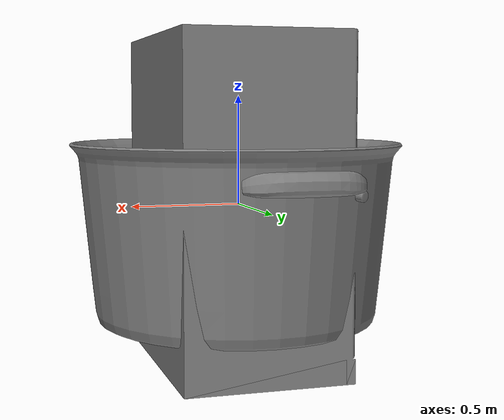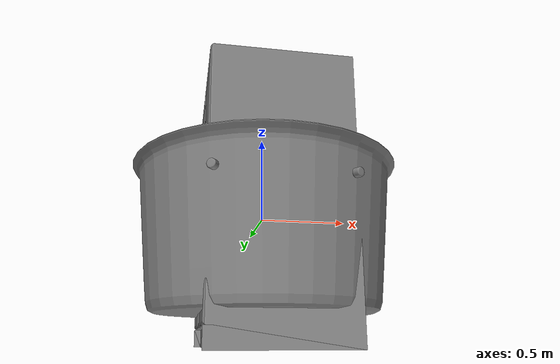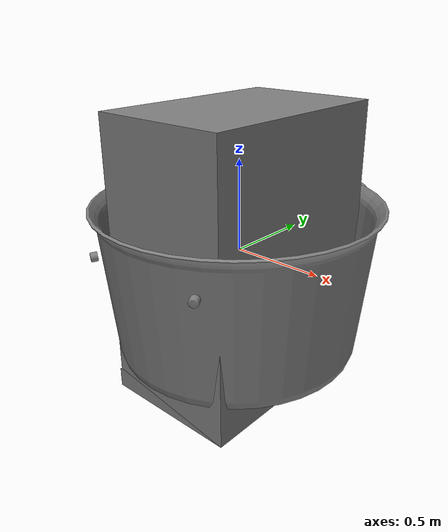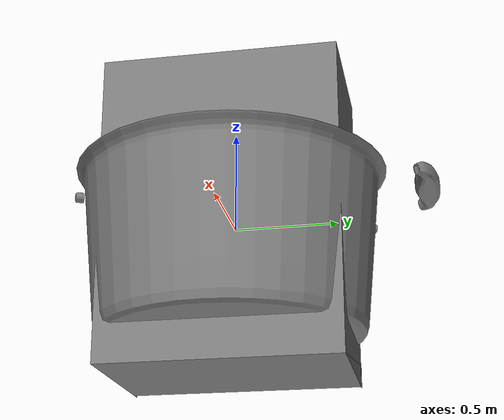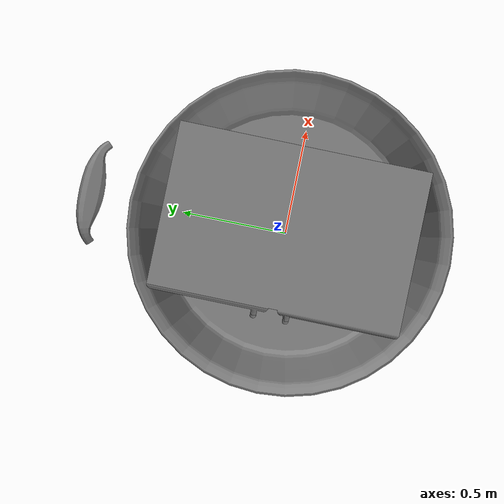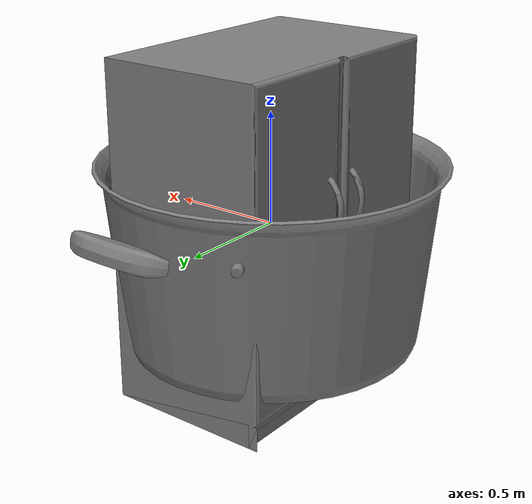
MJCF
<?xml version="1.0"?>
<mujoco model="partnet_a44c2110f646309bc7fb1a0a584939a5">
  <compiler angle="radian" meshdir="assets/11231/textured_objs/"/>
  <asset>
    <mesh name="new-5" file="new-5.obj"/>
    <mesh name="new-0" file="new-0.obj"/>
    <mesh name="new-3" file="new-3.obj"/>
    <mesh name="new-1" file="new-1.obj"/>
    <mesh name="original-3" file="original-3.obj"/>
    <mesh name="original-2" file="original-2.obj"/>
    <mesh name="original-4" file="original-4.obj"/>
    <mesh name="original-5" file="original-5.obj"/>
    <mesh name="original-6" file="original-6.obj"/>
    <mesh name="original-7" file="original-7.obj"/>
    <mesh name="original-8" file="original-8.obj"/>
    <mesh name="original-9" file="original-9.obj"/>
    <mesh name="new-4" file="new-4.obj"/>
    <mesh name="new-2" file="new-2.obj"/>
  </asset>
  <worldbody>
    <body name="fridge">
      <geom name="frame-5" pos="0 0 0" quat="0.5 0.5 -0.5 -0.5" type="mesh" contype="0" conaffinity="0" group="1" density="0" mesh="new-5"/>
      <geom pos="0 0 0" quat="0.5 0.5 -0.5 -0.5" type="mesh" contype="0" conaffinity="0" group="1" density="0" mesh="new-0"/>
      <geom pos="0 0 0" quat="0.5 0.5 -0.5 -0.5" type="mesh" mesh="new-5"/>
      <geom pos="0 0 0" quat="0.5 0.5 -0.5 -0.5" type="mesh" mesh="new-0"/>
      <body name="link_1" pos="-0.33094 -0.55436 0.772517" quat="0.5 0.5 -0.5 -0.5">
        <joint name="joint_1" pos="0 0 0" axis="0 1 0" range="0 3.14159"/>
        <geom name="door_frame-10" pos="-0.55436 -0.772517 -0.33094" quat="1 0 0 0" type="mesh" contype="0" conaffinity="0" group="1" density="0" mesh="new-3"/>
        <geom name="handle-11" pos="-0.55436 -0.772517 -0.33094" quat="1 0 0 0" type="mesh" contype="0" conaffinity="0" group="1" density="0" mesh="new-1"/>
        <geom name="other_leaf-13" pos="-0.55436 -0.772517 -0.33094" quat="1 0 0 0" type="mesh" contype="0" conaffinity="0" group="1" density="0" mesh="original-3"/>
        <geom pos="-0.55436 -0.772517 -0.33094" quat="1 0 0 0" type="mesh" contype="0" conaffinity="0" group="1" density="0" mesh="original-2"/>
        <geom pos="-0.55436 -0.772517 -0.33094" quat="1 0 0 0" type="mesh" contype="0" conaffinity="0" group="1" density="0" mesh="original-4"/>
        <geom pos="-0.55436 -0.772517 -0.33094" quat="1 0 0 0" type="mesh" contype="0" conaffinity="0" group="1" density="0" mesh="original-5"/>
        <geom pos="-0.55436 -0.772517 -0.33094" quat="1 0 0 0" type="mesh" contype="0" conaffinity="0" group="1" density="0" mesh="original-6"/>
        <geom pos="-0.55436 -0.772517 -0.33094" quat="1 0 0 0" type="mesh" contype="0" conaffinity="0" group="1" density="0" mesh="original-7"/>
        <geom pos="-0.55436 -0.772517 -0.33094" quat="1 0 0 0" type="mesh" contype="0" conaffinity="0" group="1" density="0" mesh="original-8"/>
        <geom pos="-0.55436 -0.772517 -0.33094" quat="1 0 0 0" type="mesh" contype="0" conaffinity="0" group="1" density="0" mesh="original-9"/>
        <geom pos="-0.55436 -0.772517 -0.33094" quat="1 0 0 0" type="mesh" mesh="new-3"/>
        <geom pos="-0.55436 -0.772517 -0.33094" quat="1 0 0 0" type="mesh" mesh="new-1"/>
        <geom pos="-0.55436 -0.772517 -0.33094" quat="1 0 0 0" type="mesh" mesh="original-3"/>
        <geom pos="-0.55436 -0.772517 -0.33094" quat="1 0 0 0" type="mesh" mesh="original-2"/>
        <geom pos="-0.55436 -0.772517 -0.33094" quat="1 0 0 0" type="mesh" mesh="original-4"/>
        <geom pos="-0.55436 -0.772517 -0.33094" quat="1 0 0 0" type="mesh" mesh="original-5"/>
        <geom pos="-0.55436 -0.772517 -0.33094" quat="1 0 0 0" type="mesh" mesh="original-6"/>
        <geom pos="-0.55436 -0.772517 -0.33094" quat="1 0 0 0" type="mesh" mesh="original-7"/>
        <geom pos="-0.55436 -0.772517 -0.33094" quat="1 0 0 0" type="mesh" mesh="original-8"/>
        <geom pos="-0.55436 -0.772517 -0.33094" quat="1 0 0 0" type="mesh" mesh="original-9"/>
      </body>
      <body name="link_2" pos="-0.322368 0.535019 0.772517" quat="0.5 0.5 -0.5 -0.5">
        <joint name="joint_2" pos="0 0 0" axis="0 -1 0" range="0 3.14159"/>
        <geom name="door_frame-8" pos="0.535019 -0.772517 -0.322368" quat="1 0 0 0" type="mesh" contype="0" conaffinity="0" group="1" density="0" mesh="new-4"/>
        <geom name="handle-9" pos="0.535019 -0.772517 -0.322368" quat="1 0 0 0" type="mesh" contype="0" conaffinity="0" group="1" density="0" mesh="new-2"/>
        <geom pos="0.535019 -0.772517 -0.322368" quat="1 0 0 0" type="mesh" mesh="new-4"/>
        <geom pos="0.535019 -0.772517 -0.322368" quat="1 0 0 0" type="mesh" mesh="new-2"/>
      </body>
    </body>
  </worldbody>
</mujoco>
